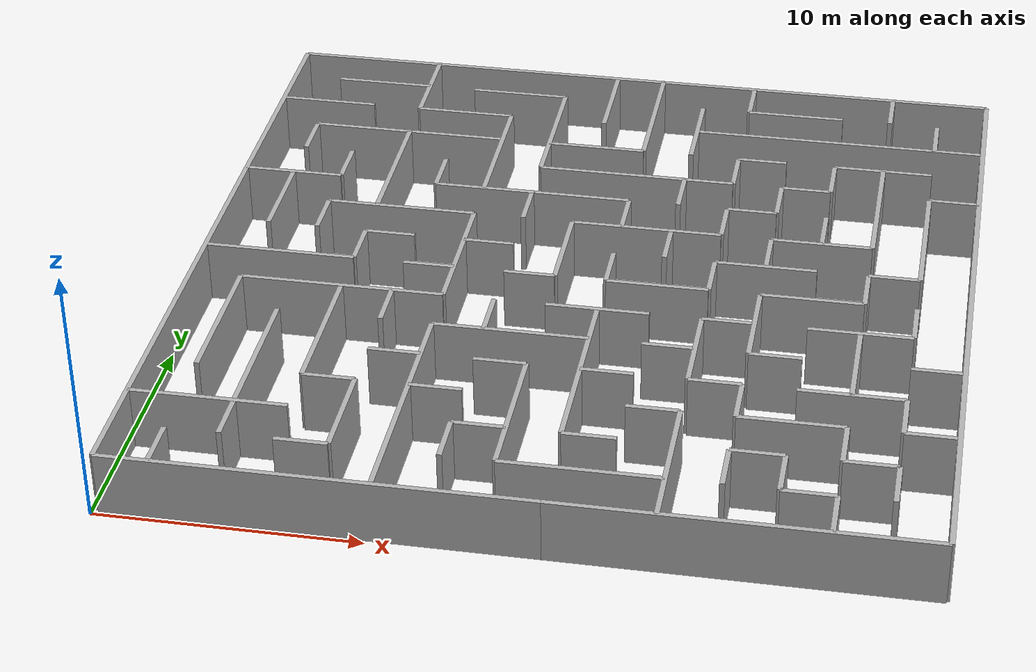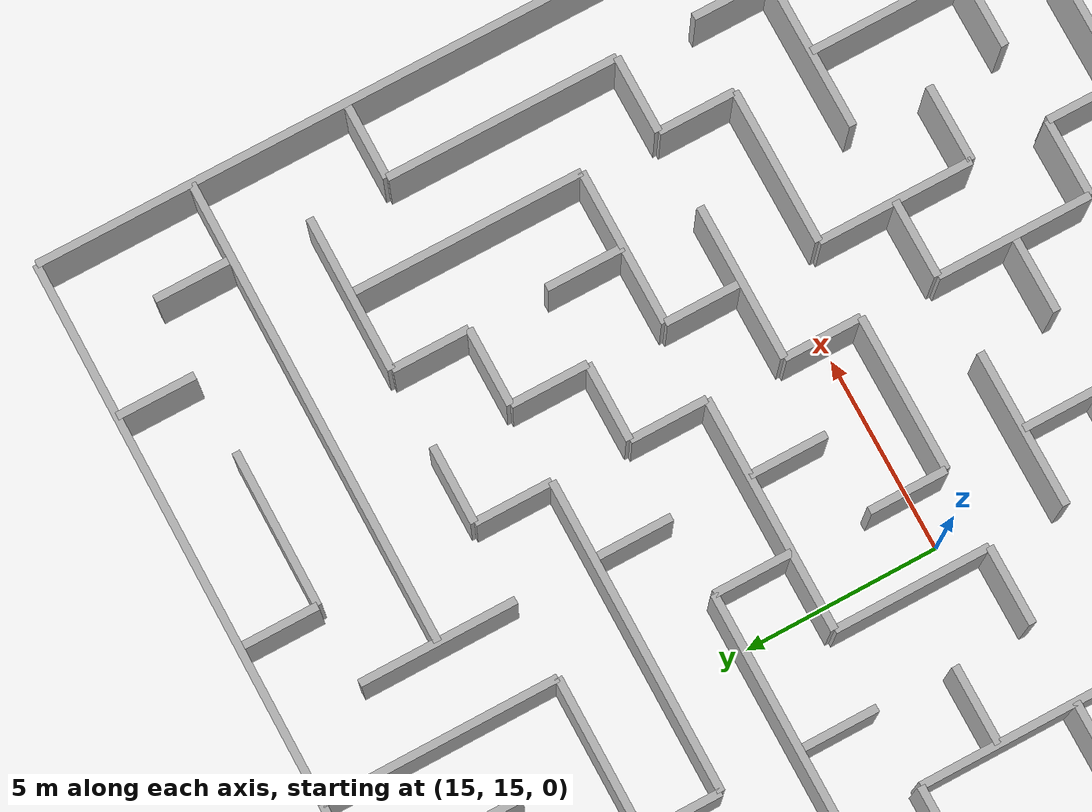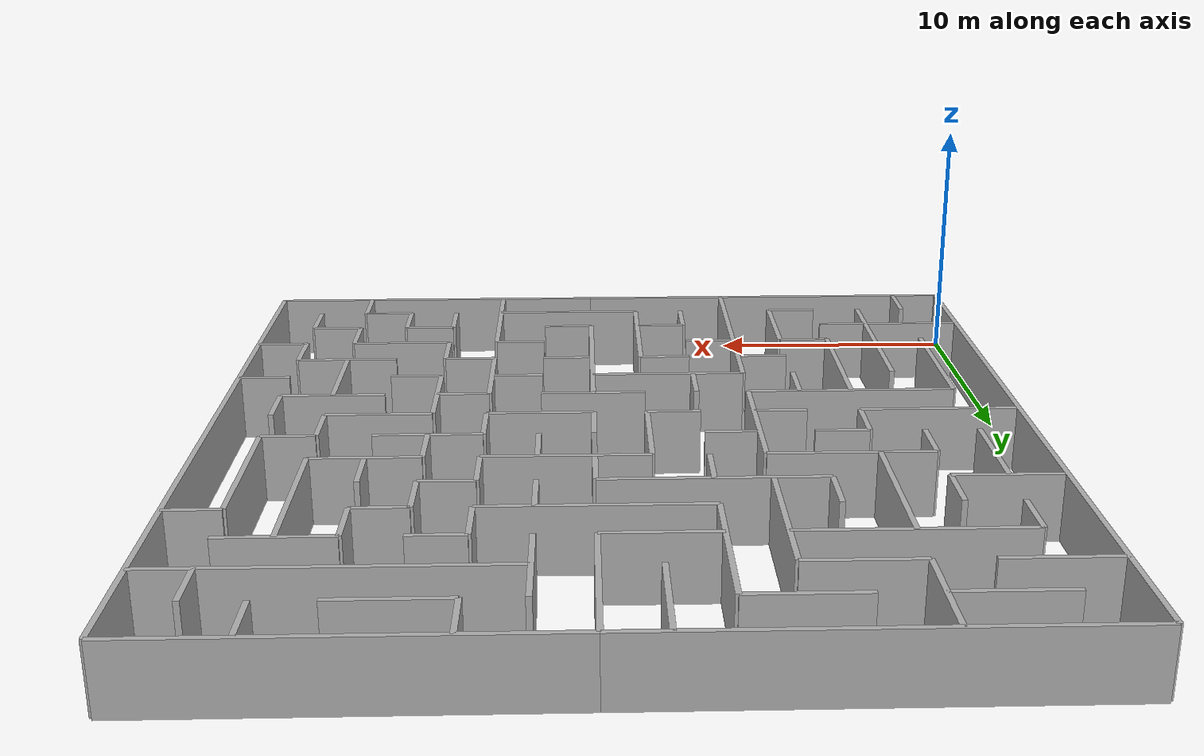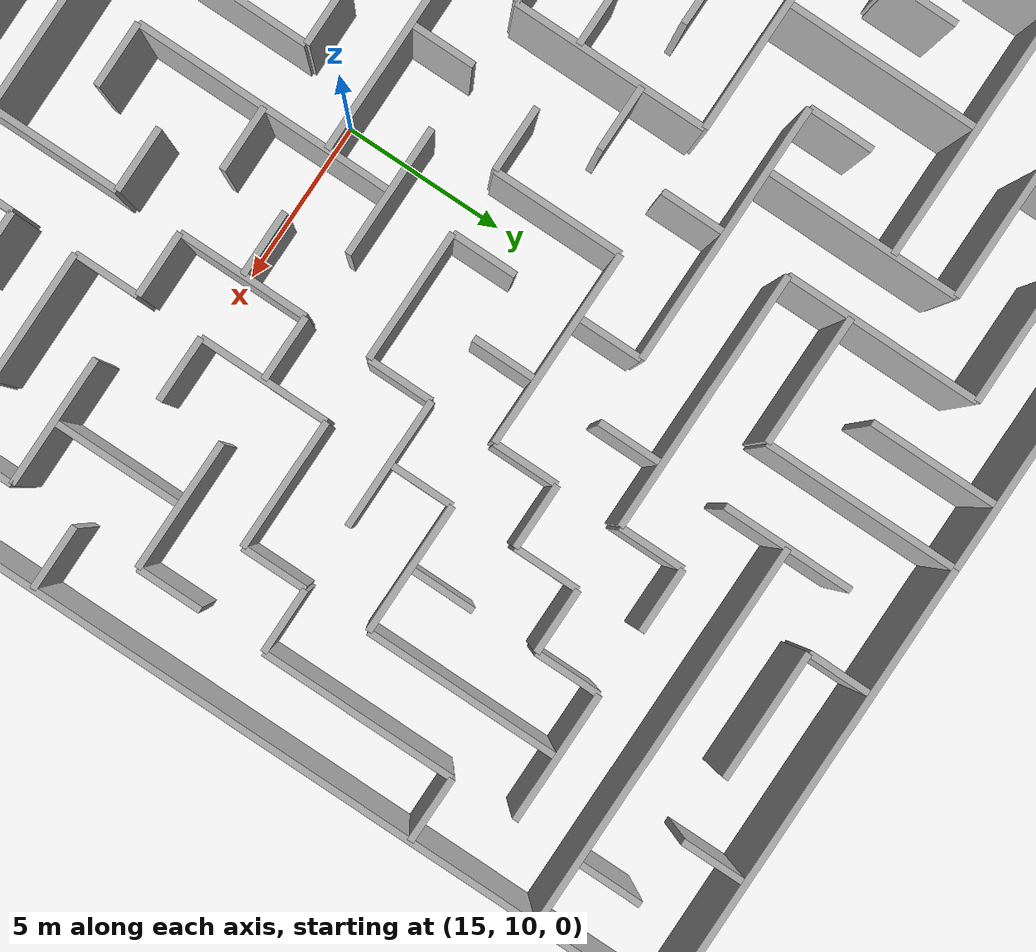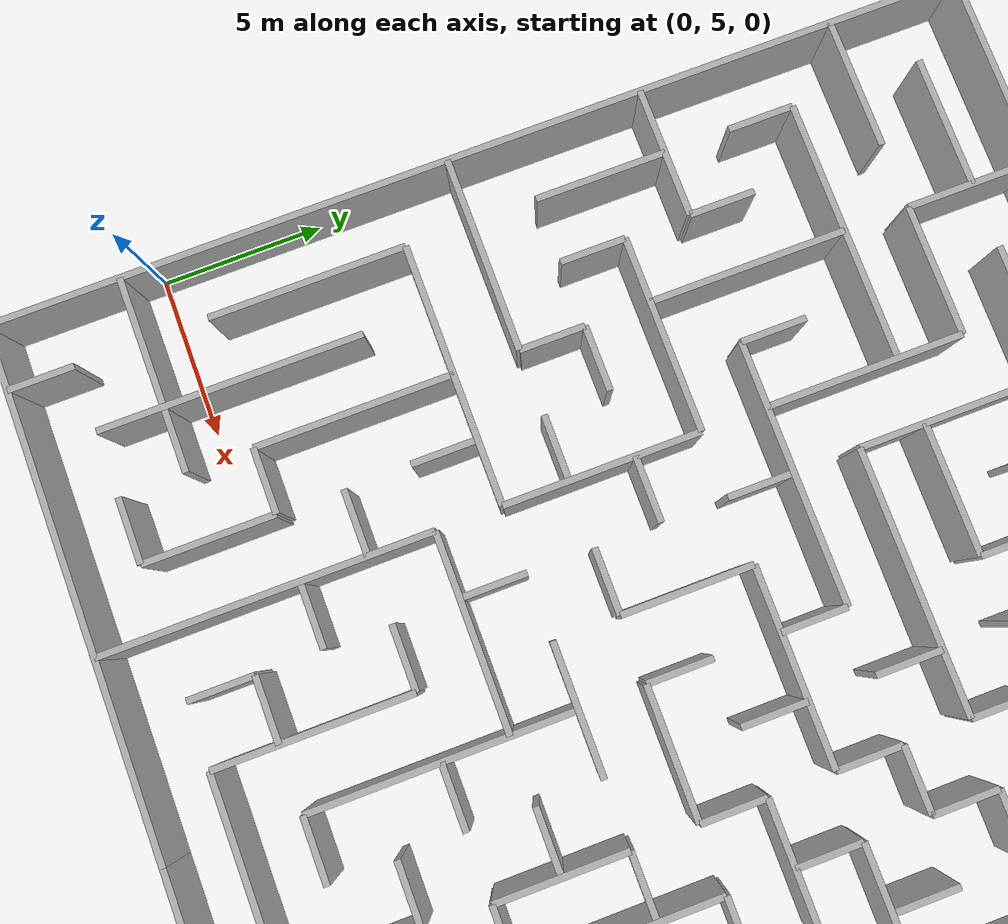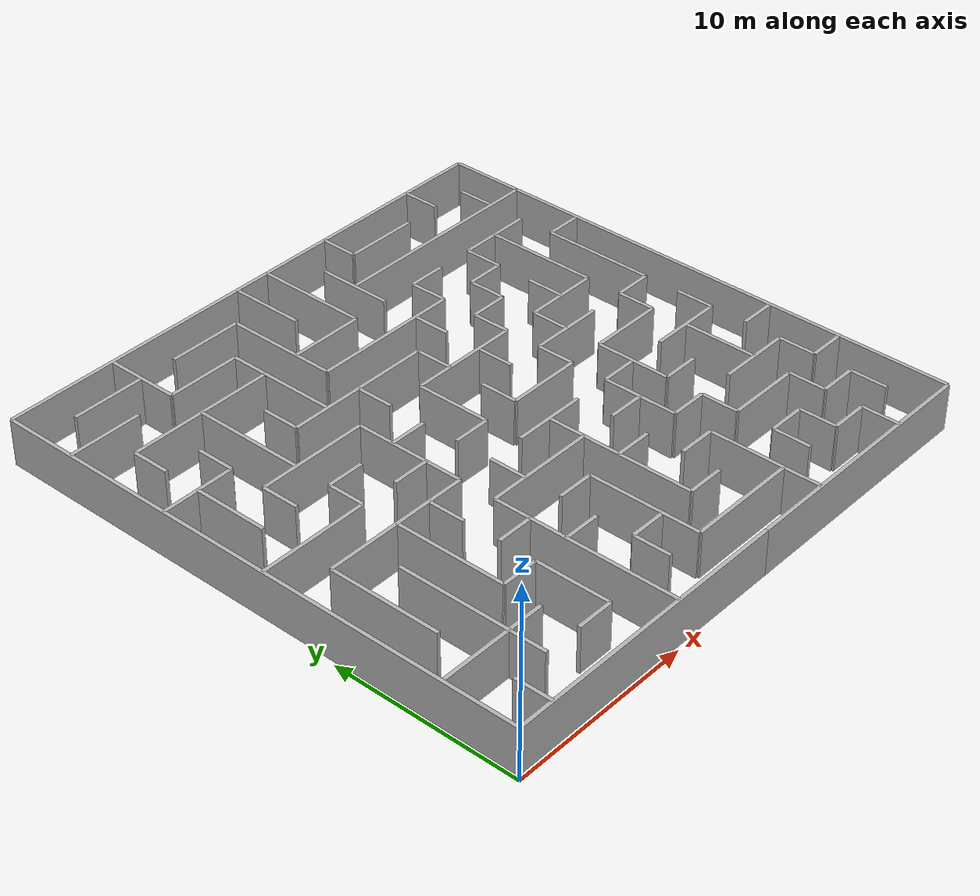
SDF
<?xml version="1.0" ?>
<sdf version="1.6">
  <model name="maze6">
    <static>true</static>
    <link name="wall_0">
      <pose>8.25 0.25 1.25 0 0 0.0</pose>
      <collision name="collision">
        <geometry>
          <box><size>16.0 0.2 2.5</size></box>
        </geometry>
      </collision>
      <visual name="visual">
        <geometry>
          <box><size>16.0 0.2 2.5</size></box>
        </geometry>
        <material>
          <ambient>0.7 0.7 0.7 1</ambient>
          <diffuse>0.7 0.7 0.7 1</diffuse>
        </material>
      </visual>
    </link>
    <link name="wall_1">
      <pose>23.25 0.25 1.25 0 0 0.0</pose>
      <collision name="collision">
        <geometry>
          <box><size>14.0 0.2 2.5</size></box>
        </geometry>
      </collision>
      <visual name="visual">
        <geometry>
          <box><size>14.0 0.2 2.5</size></box>
        </geometry>
        <material>
          <ambient>0.7 0.7 0.7 1</ambient>
          <diffuse>0.7 0.7 0.7 1</diffuse>
        </material>
      </visual>
    </link>
    <link name="wall_2">
      <pose>7.25 2.25 1.25 0 0 0.0</pose>
      <collision name="collision">
        <geometry>
          <box><size>2.0 0.2 2.5</size></box>
        </geometry>
      </collision>
      <visual name="visual">
        <geometry>
          <box><size>2.0 0.2 2.5</size></box>
        </geometry>
        <material>
          <ambient>0.7 0.7 0.7 1</ambient>
          <diffuse>0.7 0.7 0.7 1</diffuse>
        </material>
      </visual>
    </link>
    <link name="wall_3">
      <pose>17.25 2.25 1.25 0 0 0.0</pose>
      <collision name="collision">
        <geometry>
          <box><size>6.0 0.2 2.5</size></box>
        </geometry>
      </collision>
      <visual name="visual">
        <geometry>
          <box><size>6.0 0.2 2.5</size></box>
        </geometry>
        <material>
          <ambient>0.7 0.7 0.7 1</ambient>
          <diffuse>0.7 0.7 0.7 1</diffuse>
        </material>
      </visual>
    </link>
    <link name="wall_4">
      <pose>25.25 2.25 1.25 0 0 0.0</pose>
      <collision name="collision">
        <geometry>
          <box><size>2.0 0.2 2.5</size></box>
        </geometry>
      </collision>
      <visual name="visual">
        <geometry>
          <box><size>2.0 0.2 2.5</size></box>
        </geometry>
        <material>
          <ambient>0.7 0.7 0.7 1</ambient>
          <diffuse>0.7 0.7 0.7 1</diffuse>
        </material>
      </visual>
    </link>
    <link name="wall_5">
      <pose>3.25 4.25 1.25 0 0 0.0</pose>
      <collision name="collision">
        <geometry>
          <box><size>6.0 0.2 2.5</size></box>
        </geometry>
      </collision>
      <visual name="visual">
        <geometry>
          <box><size>6.0 0.2 2.5</size></box>
        </geometry>
        <material>
          <ambient>0.7 0.7 0.7 1</ambient>
          <diffuse>0.7 0.7 0.7 1</diffuse>
        </material>
      </visual>
    </link>
    <link name="wall_6">
      <pose>13.25 4.25 1.25 0 0 0.0</pose>
      <collision name="collision">
        <geometry>
          <box><size>2.0 0.2 2.5</size></box>
        </geometry>
      </collision>
      <visual name="visual">
        <geometry>
          <box><size>2.0 0.2 2.5</size></box>
        </geometry>
        <material>
          <ambient>0.7 0.7 0.7 1</ambient>
          <diffuse>0.7 0.7 0.7 1</diffuse>
        </material>
      </visual>
    </link>
    <link name="wall_7">
      <pose>17.25 4.25 1.25 0 0 0.0</pose>
      <collision name="collision">
        <geometry>
          <box><size>2.0 0.2 2.5</size></box>
        </geometry>
      </collision>
      <visual name="visual">
        <geometry>
          <box><size>2.0 0.2 2.5</size></box>
        </geometry>
        <material>
          <ambient>0.7 0.7 0.7 1</ambient>
          <diffuse>0.7 0.7 0.7 1</diffuse>
        </material>
      </visual>
    </link>
    <link name="wall_8">
      <pose>23.25 4.25 1.25 0 0 0.0</pose>
      <collision name="collision">
        <geometry>
          <box><size>2.0 0.2 2.5</size></box>
        </geometry>
      </collision>
      <visual name="visual">
        <geometry>
          <box><size>2.0 0.2 2.5</size></box>
        </geometry>
        <material>
          <ambient>0.7 0.7 0.7 1</ambient>
          <diffuse>0.7 0.7 0.7 1</diffuse>
        </material>
      </visual>
    </link>
    <link name="wall_9">
      <pose>27.25 4.25 1.25 0 0 0.0</pose>
      <collision name="collision">
        <geometry>
          <box><size>2.0 0.2 2.5</size></box>
        </geometry>
      </collision>
      <visual name="visual">
        <geometry>
          <box><size>2.0 0.2 2.5</size></box>
        </geometry>
        <material>
          <ambient>0.7 0.7 0.7 1</ambient>
          <diffuse>0.7 0.7 0.7 1</diffuse>
        </material>
      </visual>
    </link>
    <link name="wall_10">
      <pose>7.25 6.25 1.25 0 0 0.0</pose>
      <collision name="collision">
        <geometry>
          <box><size>2.0 0.2 2.5</size></box>
        </geometry>
      </collision>
      <visual name="visual">
        <geometry>
          <box><size>2.0 0.2 2.5</size></box>
        </geometry>
        <material>
          <ambient>0.7 0.7 0.7 1</ambient>
          <diffuse>0.7 0.7 0.7 1</diffuse>
        </material>
      </visual>
    </link>
    <link name="wall_11">
      <pose>11.25 6.25 1.25 0 0 0.0</pose>
      <collision name="collision">
        <geometry>
          <box><size>2.0 0.2 2.5</size></box>
        </geometry>
      </collision>
      <visual name="visual">
        <geometry>
          <box><size>2.0 0.2 2.5</size></box>
        </geometry>
        <material>
          <ambient>0.7 0.7 0.7 1</ambient>
          <diffuse>0.7 0.7 0.7 1</diffuse>
        </material>
      </visual>
    </link>
    <link name="wall_12">
      <pose>19.25 6.25 1.25 0 0 0.0</pose>
      <collision name="collision">
        <geometry>
          <box><size>2.0 0.2 2.5</size></box>
        </geometry>
      </collision>
      <visual name="visual">
        <geometry>
          <box><size>2.0 0.2 2.5</size></box>
        </geometry>
        <material>
          <ambient>0.7 0.7 0.7 1</ambient>
          <diffuse>0.7 0.7 0.7 1</diffuse>
        </material>
      </visual>
    </link>
    <link name="wall_13">
      <pose>24.25 6.25 1.25 0 0 0.0</pose>
      <collision name="collision">
        <geometry>
          <box><size>4.0 0.2 2.5</size></box>
        </geometry>
      </collision>
      <visual name="visual">
        <geometry>
          <box><size>4.0 0.2 2.5</size></box>
        </geometry>
        <material>
          <ambient>0.7 0.7 0.7 1</ambient>
          <diffuse>0.7 0.7 0.7 1</diffuse>
        </material>
      </visual>
    </link>
    <link name="wall_14">
      <pose>29.25 6.25 1.25 0 0 0.0</pose>
      <collision name="collision">
        <geometry>
          <box><size>2.0 0.2 2.5</size></box>
        </geometry>
      </collision>
      <visual name="visual">
        <geometry>
          <box><size>2.0 0.2 2.5</size></box>
        </geometry>
        <material>
          <ambient>0.7 0.7 0.7 1</ambient>
          <diffuse>0.7 0.7 0.7 1</diffuse>
        </material>
      </visual>
    </link>
    <link name="wall_15">
      <pose>9.25 8.25 1.25 0 0 0.0</pose>
      <collision name="collision">
        <geometry>
          <box><size>2.0 0.2 2.5</size></box>
        </geometry>
      </collision>
      <visual name="visual">
        <geometry>
          <box><size>2.0 0.2 2.5</size></box>
        </geometry>
        <material>
          <ambient>0.7 0.7 0.7 1</ambient>
          <diffuse>0.7 0.7 0.7 1</diffuse>
        </material>
      </visual>
    </link>
    <link name="wall_16">
      <pose>13.25 8.25 1.25 0 0 0.0</pose>
      <collision name="collision">
        <geometry>
          <box><size>2.0 0.2 2.5</size></box>
        </geometry>
      </collision>
      <visual name="visual">
        <geometry>
          <box><size>2.0 0.2 2.5</size></box>
        </geometry>
        <material>
          <ambient>0.7 0.7 0.7 1</ambient>
          <diffuse>0.7 0.7 0.7 1</diffuse>
        </material>
      </visual>
    </link>
    <link name="wall_17">
      <pose>17.25 8.25 1.25 0 0 0.0</pose>
      <collision name="collision">
        <geometry>
          <box><size>2.0 0.2 2.5</size></box>
        </geometry>
      </collision>
      <visual name="visual">
        <geometry>
          <box><size>2.0 0.2 2.5</size></box>
        </geometry>
        <material>
          <ambient>0.7 0.7 0.7 1</ambient>
          <diffuse>0.7 0.7 0.7 1</diffuse>
        </material>
      </visual>
    </link>
    <link name="wall_18">
      <pose>21.25 8.25 1.25 0 0 0.0</pose>
      <collision name="collision">
        <geometry>
          <box><size>2.0 0.2 2.5</size></box>
        </geometry>
      </collision>
      <visual name="visual">
        <geometry>
          <box><size>2.0 0.2 2.5</size></box>
        </geometry>
        <material>
          <ambient>0.7 0.7 0.7 1</ambient>
          <diffuse>0.7 0.7 0.7 1</diffuse>
        </material>
      </visual>
    </link>
    <link name="wall_19">
      <pose>26.25 8.25 1.25 0 0 0.0</pose>
      <collision name="collision">
        <geometry>
          <box><size>4.0 0.2 2.5</size></box>
        </geometry>
      </collision>
      <visual name="visual">
        <geometry>
          <box><size>4.0 0.2 2.5</size></box>
        </geometry>
        <material>
          <ambient>0.7 0.7 0.7 1</ambient>
          <diffuse>0.7 0.7 0.7 1</diffuse>
        </material>
      </visual>
    </link>
    <link name="wall_20">
      <pose>13.25 10.25 1.25 0 0 0.0</pose>
      <collision name="collision">
        <geometry>
          <box><size>6.0 0.2 2.5</size></box>
        </geometry>
      </collision>
      <visual name="visual">
        <geometry>
          <box><size>6.0 0.2 2.5</size></box>
        </geometry>
        <material>
          <ambient>0.7 0.7 0.7 1</ambient>
          <diffuse>0.7 0.7 0.7 1</diffuse>
        </material>
      </visual>
    </link>
    <link name="wall_21">
      <pose>19.25 10.25 1.25 0 0 0.0</pose>
      <collision name="collision">
        <geometry>
          <box><size>2.0 0.2 2.5</size></box>
        </geometry>
      </collision>
      <visual name="visual">
        <geometry>
          <box><size>2.0 0.2 2.5</size></box>
        </geometry>
        <material>
          <ambient>0.7 0.7 0.7 1</ambient>
          <diffuse>0.7 0.7 0.7 1</diffuse>
        </material>
      </visual>
    </link>
    <link name="wall_22">
      <pose>23.25 10.25 1.25 0 0 0.0</pose>
      <collision name="collision">
        <geometry>
          <box><size>2.0 0.2 2.5</size></box>
        </geometry>
      </collision>
      <visual name="visual">
        <geometry>
          <box><size>2.0 0.2 2.5</size></box>
        </geometry>
        <material>
          <ambient>0.7 0.7 0.7 1</ambient>
          <diffuse>0.7 0.7 0.7 1</diffuse>
        </material>
      </visual>
    </link>
    <link name="wall_23">
      <pose>29.25 10.25 1.25 0 0 0.0</pose>
      <collision name="collision">
        <geometry>
          <box><size>2.0 0.2 2.5</size></box>
        </geometry>
      </collision>
      <visual name="visual">
        <geometry>
          <box><size>2.0 0.2 2.5</size></box>
        </geometry>
        <material>
          <ambient>0.7 0.7 0.7 1</ambient>
          <diffuse>0.7 0.7 0.7 1</diffuse>
        </material>
      </visual>
    </link>
    <link name="wall_24">
      <pose>6.25 12.25 1.25 0 0 0.0</pose>
      <collision name="collision">
        <geometry>
          <box><size>8.0 0.2 2.5</size></box>
        </geometry>
      </collision>
      <visual name="visual">
        <geometry>
          <box><size>8.0 0.2 2.5</size></box>
        </geometry>
        <material>
          <ambient>0.7 0.7 0.7 1</ambient>
          <diffuse>0.7 0.7 0.7 1</diffuse>
        </material>
      </visual>
    </link>
    <link name="wall_25">
      <pose>16.25 12.25 1.25 0 0 0.0</pose>
      <collision name="collision">
        <geometry>
          <box><size>4.0 0.2 2.5</size></box>
        </geometry>
      </collision>
      <visual name="visual">
        <geometry>
          <box><size>4.0 0.2 2.5</size></box>
        </geometry>
        <material>
          <ambient>0.7 0.7 0.7 1</ambient>
          <diffuse>0.7 0.7 0.7 1</diffuse>
        </material>
      </visual>
    </link>
    <link name="wall_26">
      <pose>21.25 12.25 1.25 0 0 0.0</pose>
      <collision name="collision">
        <geometry>
          <box><size>2.0 0.2 2.5</size></box>
        </geometry>
      </collision>
      <visual name="visual">
        <geometry>
          <box><size>2.0 0.2 2.5</size></box>
        </geometry>
        <material>
          <ambient>0.7 0.7 0.7 1</ambient>
          <diffuse>0.7 0.7 0.7 1</diffuse>
        </material>
      </visual>
    </link>
    <link name="wall_27">
      <pose>26.25 12.25 1.25 0 0 0.0</pose>
      <collision name="collision">
        <geometry>
          <box><size>4.0 0.2 2.5</size></box>
        </geometry>
      </collision>
      <visual name="visual">
        <geometry>
          <box><size>4.0 0.2 2.5</size></box>
        </geometry>
        <material>
          <ambient>0.7 0.7 0.7 1</ambient>
          <diffuse>0.7 0.7 0.7 1</diffuse>
        </material>
      </visual>
    </link>
    <link name="wall_28">
      <pose>3.25 14.25 1.25 0 0 0.0</pose>
      <collision name="collision">
        <geometry>
          <box><size>6.0 0.2 2.5</size></box>
        </geometry>
      </collision>
      <visual name="visual">
        <geometry>
          <box><size>6.0 0.2 2.5</size></box>
        </geometry>
        <material>
          <ambient>0.7 0.7 0.7 1</ambient>
          <diffuse>0.7 0.7 0.7 1</diffuse>
        </material>
      </visual>
    </link>
    <link name="wall_29">
      <pose>9.25 14.25 1.25 0 0 0.0</pose>
      <collision name="collision">
        <geometry>
          <box><size>2.0 0.2 2.5</size></box>
        </geometry>
      </collision>
      <visual name="visual">
        <geometry>
          <box><size>2.0 0.2 2.5</size></box>
        </geometry>
        <material>
          <ambient>0.7 0.7 0.7 1</ambient>
          <diffuse>0.7 0.7 0.7 1</diffuse>
        </material>
      </visual>
    </link>
    <link name="wall_30">
      <pose>13.25 14.25 1.25 0 0 0.0</pose>
      <collision name="collision">
        <geometry>
          <box><size>2.0 0.2 2.5</size></box>
        </geometry>
      </collision>
      <visual name="visual">
        <geometry>
          <box><size>2.0 0.2 2.5</size></box>
        </geometry>
        <material>
          <ambient>0.7 0.7 0.7 1</ambient>
          <diffuse>0.7 0.7 0.7 1</diffuse>
        </material>
      </visual>
    </link>
    <link name="wall_31">
      <pose>18.25 14.25 1.25 0 0 0.0</pose>
      <collision name="collision">
        <geometry>
          <box><size>4.0 0.2 2.5</size></box>
        </geometry>
      </collision>
      <visual name="visual">
        <geometry>
          <box><size>4.0 0.2 2.5</size></box>
        </geometry>
        <material>
          <ambient>0.7 0.7 0.7 1</ambient>
          <diffuse>0.7 0.7 0.7 1</diffuse>
        </material>
      </visual>
    </link>
    <link name="wall_32">
      <pose>24.25 14.25 1.25 0 0 0.0</pose>
      <collision name="collision">
        <geometry>
          <box><size>4.0 0.2 2.5</size></box>
        </geometry>
      </collision>
      <visual name="visual">
        <geometry>
          <box><size>4.0 0.2 2.5</size></box>
        </geometry>
        <material>
          <ambient>0.7 0.7 0.7 1</ambient>
          <diffuse>0.7 0.7 0.7 1</diffuse>
        </material>
      </visual>
    </link>
    <link name="wall_33">
      <pose>7.25 16.25 1.25 0 0 0.0</pose>
      <collision name="collision">
        <geometry>
          <box><size>2.0 0.2 2.5</size></box>
        </geometry>
      </collision>
      <visual name="visual">
        <geometry>
          <box><size>2.0 0.2 2.5</size></box>
        </geometry>
        <material>
          <ambient>0.7 0.7 0.7 1</ambient>
          <diffuse>0.7 0.7 0.7 1</diffuse>
        </material>
      </visual>
    </link>
    <link name="wall_34">
      <pose>11.25 16.25 1.25 0 0 0.0</pose>
      <collision name="collision">
        <geometry>
          <box><size>2.0 0.2 2.5</size></box>
        </geometry>
      </collision>
      <visual name="visual">
        <geometry>
          <box><size>2.0 0.2 2.5</size></box>
        </geometry>
        <material>
          <ambient>0.7 0.7 0.7 1</ambient>
          <diffuse>0.7 0.7 0.7 1</diffuse>
        </material>
      </visual>
    </link>
    <link name="wall_35">
      <pose>22.25 16.25 1.25 0 0 0.0</pose>
      <collision name="collision">
        <geometry>
          <box><size>4.0 0.2 2.5</size></box>
        </geometry>
      </collision>
      <visual name="visual">
        <geometry>
          <box><size>4.0 0.2 2.5</size></box>
        </geometry>
        <material>
          <ambient>0.7 0.7 0.7 1</ambient>
          <diffuse>0.7 0.7 0.7 1</diffuse>
        </material>
      </visual>
    </link>
    <link name="wall_36">
      <pose>27.25 16.25 1.25 0 0 0.0</pose>
      <collision name="collision">
        <geometry>
          <box><size>2.0 0.2 2.5</size></box>
        </geometry>
      </collision>
      <visual name="visual">
        <geometry>
          <box><size>2.0 0.2 2.5</size></box>
        </geometry>
        <material>
          <ambient>0.7 0.7 0.7 1</ambient>
          <diffuse>0.7 0.7 0.7 1</diffuse>
        </material>
      </visual>
    </link>
    <link name="wall_37">
      <pose>7.25 18.25 1.25 0 0 0.0</pose>
      <collision name="collision">
        <geometry>
          <box><size>6.0 0.2 2.5</size></box>
        </geometry>
      </collision>
      <visual name="visual">
        <geometry>
          <box><size>6.0 0.2 2.5</size></box>
        </geometry>
        <material>
          <ambient>0.7 0.7 0.7 1</ambient>
          <diffuse>0.7 0.7 0.7 1</diffuse>
        </material>
      </visual>
    </link>
    <link name="wall_38">
      <pose>17.25 18.25 1.25 0 0 0.0</pose>
      <collision name="collision">
        <geometry>
          <box><size>6.0 0.2 2.5</size></box>
        </geometry>
      </collision>
      <visual name="visual">
        <geometry>
          <box><size>6.0 0.2 2.5</size></box>
        </geometry>
        <material>
          <ambient>0.7 0.7 0.7 1</ambient>
          <diffuse>0.7 0.7 0.7 1</diffuse>
        </material>
      </visual>
    </link>
    <link name="wall_39">
      <pose>24.25 18.25 1.25 0 0 0.0</pose>
      <collision name="collision">
        <geometry>
          <box><size>4.0 0.2 2.5</size></box>
        </geometry>
      </collision>
      <visual name="visual">
        <geometry>
          <box><size>4.0 0.2 2.5</size></box>
        </geometry>
        <material>
          <ambient>0.7 0.7 0.7 1</ambient>
          <diffuse>0.7 0.7 0.7 1</diffuse>
        </material>
      </visual>
    </link>
    <link name="wall_40">
      <pose>2.25 20.25 1.25 0 0 0.0</pose>
      <collision name="collision">
        <geometry>
          <box><size>4.0 0.2 2.5</size></box>
        </geometry>
      </collision>
      <visual name="visual">
        <geometry>
          <box><size>4.0 0.2 2.5</size></box>
        </geometry>
        <material>
          <ambient>0.7 0.7 0.7 1</ambient>
          <diffuse>0.7 0.7 0.7 1</diffuse>
        </material>
      </visual>
    </link>
    <link name="wall_41">
      <pose>12.25 20.25 1.25 0 0 0.0</pose>
      <collision name="collision">
        <geometry>
          <box><size>8.0 0.2 2.5</size></box>
        </geometry>
      </collision>
      <visual name="visual">
        <geometry>
          <box><size>8.0 0.2 2.5</size></box>
        </geometry>
        <material>
          <ambient>0.7 0.7 0.7 1</ambient>
          <diffuse>0.7 0.7 0.7 1</diffuse>
        </material>
      </visual>
    </link>
    <link name="wall_42">
      <pose>21.25 20.25 1.25 0 0 0.0</pose>
      <collision name="collision">
        <geometry>
          <box><size>2.0 0.2 2.5</size></box>
        </geometry>
      </collision>
      <visual name="visual">
        <geometry>
          <box><size>2.0 0.2 2.5</size></box>
        </geometry>
        <material>
          <ambient>0.7 0.7 0.7 1</ambient>
          <diffuse>0.7 0.7 0.7 1</diffuse>
        </material>
      </visual>
    </link>
    <link name="wall_43">
      <pose>16.25 22.25 1.25 0 0 0.0</pose>
      <collision name="collision">
        <geometry>
          <box><size>8.0 0.2 2.5</size></box>
        </geometry>
      </collision>
      <visual name="visual">
        <geometry>
          <box><size>8.0 0.2 2.5</size></box>
        </geometry>
        <material>
          <ambient>0.7 0.7 0.7 1</ambient>
          <diffuse>0.7 0.7 0.7 1</diffuse>
        </material>
      </visual>
    </link>
    <link name="wall_44">
      <pose>23.25 22.25 1.25 0 0 0.0</pose>
      <collision name="collision">
        <geometry>
          <box><size>2.0 0.2 2.5</size></box>
        </geometry>
      </collision>
      <visual name="visual">
        <geometry>
          <box><size>2.0 0.2 2.5</size></box>
        </geometry>
        <material>
          <ambient>0.7 0.7 0.7 1</ambient>
          <diffuse>0.7 0.7 0.7 1</diffuse>
        </material>
      </visual>
    </link>
    <link name="wall_45">
      <pose>29.25 22.25 1.25 0 0 0.0</pose>
      <collision name="collision">
        <geometry>
          <box><size>2.0 0.2 2.5</size></box>
        </geometry>
      </collision>
      <visual name="visual">
        <geometry>
          <box><size>2.0 0.2 2.5</size></box>
        </geometry>
        <material>
          <ambient>0.7 0.7 0.7 1</ambient>
          <diffuse>0.7 0.7 0.7 1</diffuse>
        </material>
      </visual>
    </link>
    <link name="wall_46">
      <pose>6.25 24.25 1.25 0 0 0.0</pose>
      <collision name="collision">
        <geometry>
          <box><size>8.0 0.2 2.5</size></box>
        </geometry>
      </collision>
      <visual name="visual">
        <geometry>
          <box><size>8.0 0.2 2.5</size></box>
        </geometry>
        <material>
          <ambient>0.7 0.7 0.7 1</ambient>
          <diffuse>0.7 0.7 0.7 1</diffuse>
        </material>
      </visual>
    </link>
    <link name="wall_47">
      <pose>14.25 24.25 1.25 0 0 0.0</pose>
      <collision name="collision">
        <geometry>
          <box><size>4.0 0.2 2.5</size></box>
        </geometry>
      </collision>
      <visual name="visual">
        <geometry>
          <box><size>4.0 0.2 2.5</size></box>
        </geometry>
        <material>
          <ambient>0.7 0.7 0.7 1</ambient>
          <diffuse>0.7 0.7 0.7 1</diffuse>
        </material>
      </visual>
    </link>
    <link name="wall_48">
      <pose>21.25 24.25 1.25 0 0 0.0</pose>
      <collision name="collision">
        <geometry>
          <box><size>2.0 0.2 2.5</size></box>
        </geometry>
      </collision>
      <visual name="visual">
        <geometry>
          <box><size>2.0 0.2 2.5</size></box>
        </geometry>
        <material>
          <ambient>0.7 0.7 0.7 1</ambient>
          <diffuse>0.7 0.7 0.7 1</diffuse>
        </material>
      </visual>
    </link>
    <link name="wall_49">
      <pose>26.25 24.25 1.25 0 0 0.0</pose>
      <collision name="collision">
        <geometry>
          <box><size>4.0 0.2 2.5</size></box>
        </geometry>
      </collision>
      <visual name="visual">
        <geometry>
          <box><size>4.0 0.2 2.5</size></box>
        </geometry>
        <material>
          <ambient>0.7 0.7 0.7 1</ambient>
          <diffuse>0.7 0.7 0.7 1</diffuse>
        </material>
      </visual>
    </link>
    <link name="wall_50">
      <pose>2.25 26.25 1.25 0 0 0.0</pose>
      <collision name="collision">
        <geometry>
          <box><size>4.0 0.2 2.5</size></box>
        </geometry>
      </collision>
      <visual name="visual">
        <geometry>
          <box><size>4.0 0.2 2.5</size></box>
        </geometry>
        <material>
          <ambient>0.7 0.7 0.7 1</ambient>
          <diffuse>0.7 0.7 0.7 1</diffuse>
        </material>
      </visual>
    </link>
    <link name="wall_51">
      <pose>8.25 26.25 1.25 0 0 0.0</pose>
      <collision name="collision">
        <geometry>
          <box><size>4.0 0.2 2.5</size></box>
        </geometry>
      </collision>
      <visual name="visual">
        <geometry>
          <box><size>4.0 0.2 2.5</size></box>
        </geometry>
        <material>
          <ambient>0.7 0.7 0.7 1</ambient>
          <diffuse>0.7 0.7 0.7 1</diffuse>
        </material>
      </visual>
    </link>
    <link name="wall_52">
      <pose>24.25 26.25 1.25 0 0 0.0</pose>
      <collision name="collision">
        <geometry>
          <box><size>12.0 0.2 2.5</size></box>
        </geometry>
      </collision>
      <visual name="visual">
        <geometry>
          <box><size>12.0 0.2 2.5</size></box>
        </geometry>
        <material>
          <ambient>0.7 0.7 0.7 1</ambient>
          <diffuse>0.7 0.7 0.7 1</diffuse>
        </material>
      </visual>
    </link>
    <link name="wall_53">
      <pose>4.25 28.25 1.25 0 0 0.0</pose>
      <collision name="collision">
        <geometry>
          <box><size>4.0 0.2 2.5</size></box>
        </geometry>
      </collision>
      <visual name="visual">
        <geometry>
          <box><size>4.0 0.2 2.5</size></box>
        </geometry>
        <material>
          <ambient>0.7 0.7 0.7 1</ambient>
          <diffuse>0.7 0.7 0.7 1</diffuse>
        </material>
      </visual>
    </link>
    <link name="wall_54">
      <pose>10.25 28.25 1.25 0 0 0.0</pose>
      <collision name="collision">
        <geometry>
          <box><size>4.0 0.2 2.5</size></box>
        </geometry>
      </collision>
      <visual name="visual">
        <geometry>
          <box><size>4.0 0.2 2.5</size></box>
        </geometry>
        <material>
          <ambient>0.7 0.7 0.7 1</ambient>
          <diffuse>0.7 0.7 0.7 1</diffuse>
        </material>
      </visual>
    </link>
    <link name="wall_55">
      <pose>22.25 28.25 1.25 0 0 0.0</pose>
      <collision name="collision">
        <geometry>
          <box><size>4.0 0.2 2.5</size></box>
        </geometry>
      </collision>
      <visual name="visual">
        <geometry>
          <box><size>4.0 0.2 2.5</size></box>
        </geometry>
        <material>
          <ambient>0.7 0.7 0.7 1</ambient>
          <diffuse>0.7 0.7 0.7 1</diffuse>
        </material>
      </visual>
    </link>
    <link name="wall_56">
      <pose>8.25 30.25 1.25 0 0 0.0</pose>
      <collision name="collision">
        <geometry>
          <box><size>16.0 0.2 2.5</size></box>
        </geometry>
      </collision>
      <visual name="visual">
        <geometry>
          <box><size>16.0 0.2 2.5</size></box>
        </geometry>
        <material>
          <ambient>0.7 0.7 0.7 1</ambient>
          <diffuse>0.7 0.7 0.7 1</diffuse>
        </material>
      </visual>
    </link>
    <link name="wall_57">
      <pose>23.25 30.25 1.25 0 0 0.0</pose>
      <collision name="collision">
        <geometry>
          <box><size>14.0 0.2 2.5</size></box>
        </geometry>
      </collision>
      <visual name="visual">
        <geometry>
          <box><size>14.0 0.2 2.5</size></box>
        </geometry>
        <material>
          <ambient>0.7 0.7 0.7 1</ambient>
          <diffuse>0.7 0.7 0.7 1</diffuse>
        </material>
      </visual>
    </link>
    <link name="wall_58">
      <pose>0.25 15.25 1.25 0 0 1.5707963267948966</pose>
      <collision name="collision">
        <geometry>
          <box><size>30.0 0.2 2.5</size></box>
        </geometry>
      </collision>
      <visual name="visual">
        <geometry>
          <box><size>30.0 0.2 2.5</size></box>
        </geometry>
        <material>
          <ambient>0.7 0.7 0.7 1</ambient>
          <diffuse>0.7 0.7 0.7 1</diffuse>
        </material>
      </visual>
    </link>
    <link name="wall_59">
      <pose>2.25 1.25 1.25 0 0 1.5707963267948966</pose>
      <collision name="collision">
        <geometry>
          <box><size>2.0 0.2 2.5</size></box>
        </geometry>
      </collision>
      <visual name="visual">
        <geometry>
          <box><size>2.0 0.2 2.5</size></box>
        </geometry>
        <material>
          <ambient>0.7 0.7 0.7 1</ambient>
          <diffuse>0.7 0.7 0.7 1</diffuse>
        </material>
      </visual>
    </link>
    <link name="wall_60">
      <pose>2.25 9.25 1.25 0 0 1.5707963267948966</pose>
      <collision name="collision">
        <geometry>
          <box><size>6.0 0.2 2.5</size></box>
        </geometry>
      </collision>
      <visual name="visual">
        <geometry>
          <box><size>6.0 0.2 2.5</size></box>
        </geometry>
        <material>
          <ambient>0.7 0.7 0.7 1</ambient>
          <diffuse>0.7 0.7 0.7 1</diffuse>
        </material>
      </visual>
    </link>
    <link name="wall_61">
      <pose>2.25 18.25 1.25 0 0 1.5707963267948966</pose>
      <collision name="collision">
        <geometry>
          <box><size>4.0 0.2 2.5</size></box>
        </geometry>
      </collision>
      <visual name="visual">
        <geometry>
          <box><size>4.0 0.2 2.5</size></box>
        </geometry>
        <material>
          <ambient>0.7 0.7 0.7 1</ambient>
          <diffuse>0.7 0.7 0.7 1</diffuse>
        </material>
      </visual>
    </link>
    <link name="wall_62">
      <pose>2.25 23.25 1.25 0 0 1.5707963267948966</pose>
      <collision name="collision">
        <geometry>
          <box><size>2.0 0.2 2.5</size></box>
        </geometry>
      </collision>
      <visual name="visual">
        <geometry>
          <box><size>2.0 0.2 2.5</size></box>
        </geometry>
        <material>
          <ambient>0.7 0.7 0.7 1</ambient>
          <diffuse>0.7 0.7 0.7 1</diffuse>
        </material>
      </visual>
    </link>
    <link name="wall_63">
      <pose>4.25 6.25 1.25 0 0 1.5707963267948966</pose>
      <collision name="collision">
        <geometry>
          <box><size>8.0 0.2 2.5</size></box>
        </geometry>
      </collision>
      <visual name="visual">
        <geometry>
          <box><size>8.0 0.2 2.5</size></box>
        </geometry>
        <material>
          <ambient>0.7 0.7 0.7 1</ambient>
          <diffuse>0.7 0.7 0.7 1</diffuse>
        </material>
      </visual>
    </link>
    <link name="wall_64">
      <pose>4.25 17.25 1.25 0 0 1.5707963267948966</pose>
      <collision name="collision">
        <geometry>
          <box><size>2.0 0.2 2.5</size></box>
        </geometry>
      </collision>
      <visual name="visual">
        <geometry>
          <box><size>2.0 0.2 2.5</size></box>
        </geometry>
        <material>
          <ambient>0.7 0.7 0.7 1</ambient>
          <diffuse>0.7 0.7 0.7 1</diffuse>
        </material>
      </visual>
    </link>
    <link name="wall_65">
      <pose>4.25 21.25 1.25 0 0 1.5707963267948966</pose>
      <collision name="collision">
        <geometry>
          <box><size>2.0 0.2 2.5</size></box>
        </geometry>
      </collision>
      <visual name="visual">
        <geometry>
          <box><size>2.0 0.2 2.5</size></box>
        </geometry>
        <material>
          <ambient>0.7 0.7 0.7 1</ambient>
          <diffuse>0.7 0.7 0.7 1</diffuse>
        </material>
      </visual>
    </link>
    <link name="wall_66">
      <pose>6.25 9.25 1.25 0 0 1.5707963267948966</pose>
      <collision name="collision">
        <geometry>
          <box><size>6.0 0.2 2.5</size></box>
        </geometry>
      </collision>
      <visual name="visual">
        <geometry>
          <box><size>6.0 0.2 2.5</size></box>
        </geometry>
        <material>
          <ambient>0.7 0.7 0.7 1</ambient>
          <diffuse>0.7 0.7 0.7 1</diffuse>
        </material>
      </visual>
    </link>
    <link name="wall_67">
      <pose>6.25 15.25 1.25 0 0 1.5707963267948966</pose>
      <collision name="collision">
        <geometry>
          <box><size>2.0 0.2 2.5</size></box>
        </geometry>
      </collision>
      <visual name="visual">
        <geometry>
          <box><size>2.0 0.2 2.5</size></box>
        </geometry>
        <material>
          <ambient>0.7 0.7 0.7 1</ambient>
          <diffuse>0.7 0.7 0.7 1</diffuse>
        </material>
      </visual>
    </link>
    <link name="wall_68">
      <pose>6.25 21.25 1.25 0 0 1.5707963267948966</pose>
      <collision name="collision">
        <geometry>
          <box><size>6.0 0.2 2.5</size></box>
        </geometry>
      </collision>
      <visual name="visual">
        <geometry>
          <box><size>6.0 0.2 2.5</size></box>
        </geometry>
        <material>
          <ambient>0.7 0.7 0.7 1</ambient>
          <diffuse>0.7 0.7 0.7 1</diffuse>
        </material>
      </visual>
    </link>
    <link name="wall_69">
      <pose>6.25 28.25 1.25 0 0 1.5707963267948966</pose>
      <collision name="collision">
        <geometry>
          <box><size>4.0 0.2 2.5</size></box>
        </geometry>
      </collision>
      <visual name="visual">
        <geometry>
          <box><size>4.0 0.2 2.5</size></box>
        </geometry>
        <material>
          <ambient>0.7 0.7 0.7 1</ambient>
          <diffuse>0.7 0.7 0.7 1</diffuse>
        </material>
      </visual>
    </link>
    <link name="wall_70">
      <pose>8.25 4.25 1.25 0 0 1.5707963267948966</pose>
      <collision name="collision">
        <geometry>
          <box><size>4.0 0.2 2.5</size></box>
        </geometry>
      </collision>
      <visual name="visual">
        <geometry>
          <box><size>4.0 0.2 2.5</size></box>
        </geometry>
        <material>
          <ambient>0.7 0.7 0.7 1</ambient>
          <diffuse>0.7 0.7 0.7 1</diffuse>
        </material>
      </visual>
    </link>
    <link name="wall_71">
      <pose>8.25 11.25 1.25 0 0 1.5707963267948966</pose>
      <collision name="collision">
        <geometry>
          <box><size>2.0 0.2 2.5</size></box>
        </geometry>
      </collision>
      <visual name="visual">
        <geometry>
          <box><size>2.0 0.2 2.5</size></box>
        </geometry>
        <material>
          <ambient>0.7 0.7 0.7 1</ambient>
          <diffuse>0.7 0.7 0.7 1</diffuse>
        </material>
      </visual>
    </link>
    <link name="wall_72">
      <pose>8.25 21.25 1.25 0 0 1.5707963267948966</pose>
      <collision name="collision">
        <geometry>
          <box><size>2.0 0.2 2.5</size></box>
        </geometry>
      </collision>
      <visual name="visual">
        <geometry>
          <box><size>2.0 0.2 2.5</size></box>
        </geometry>
        <material>
          <ambient>0.7 0.7 0.7 1</ambient>
          <diffuse>0.7 0.7 0.7 1</diffuse>
        </material>
      </visual>
    </link>
    <link name="wall_73">
      <pose>10.25 5.25 1.25 0 0 1.5707963267948966</pose>
      <collision name="collision">
        <geometry>
          <box><size>10.0 0.2 2.5</size></box>
        </geometry>
      </collision>
      <visual name="visual">
        <geometry>
          <box><size>10.0 0.2 2.5</size></box>
        </geometry>
        <material>
          <ambient>0.7 0.7 0.7 1</ambient>
          <diffuse>0.7 0.7 0.7 1</diffuse>
        </material>
      </visual>
    </link>
    <link name="wall_74">
      <pose>10.25 15.25 1.25 0 0 1.5707963267948966</pose>
      <collision name="collision">
        <geometry>
          <box><size>6.0 0.2 2.5</size></box>
        </geometry>
      </collision>
      <visual name="visual">
        <geometry>
          <box><size>6.0 0.2 2.5</size></box>
        </geometry>
        <material>
          <ambient>0.7 0.7 0.7 1</ambient>
          <diffuse>0.7 0.7 0.7 1</diffuse>
        </material>
      </visual>
    </link>
    <link name="wall_75">
      <pose>10.25 23.25 1.25 0 0 1.5707963267948966</pose>
      <collision name="collision">
        <geometry>
          <box><size>6.0 0.2 2.5</size></box>
        </geometry>
      </collision>
      <visual name="visual">
        <geometry>
          <box><size>6.0 0.2 2.5</size></box>
        </geometry>
        <material>
          <ambient>0.7 0.7 0.7 1</ambient>
          <diffuse>0.7 0.7 0.7 1</diffuse>
        </material>
      </visual>
    </link>
    <link name="wall_76">
      <pose>12.25 3.25 1.25 0 0 1.5707963267948966</pose>
      <collision name="collision">
        <geometry>
          <box><size>2.0 0.2 2.5</size></box>
        </geometry>
      </collision>
      <visual name="visual">
        <geometry>
          <box><size>2.0 0.2 2.5</size></box>
        </geometry>
        <material>
          <ambient>0.7 0.7 0.7 1</ambient>
          <diffuse>0.7 0.7 0.7 1</diffuse>
        </material>
      </visual>
    </link>
    <link name="wall_77">
      <pose>12.25 11.25 1.25 0 0 1.5707963267948966</pose>
      <collision name="collision">
        <geometry>
          <box><size>2.0 0.2 2.5</size></box>
        </geometry>
      </collision>
      <visual name="visual">
        <geometry>
          <box><size>2.0 0.2 2.5</size></box>
        </geometry>
        <material>
          <ambient>0.7 0.7 0.7 1</ambient>
          <diffuse>0.7 0.7 0.7 1</diffuse>
        </material>
      </visual>
    </link>
    <link name="wall_78">
      <pose>12.25 19.25 1.25 0 0 1.5707963267948966</pose>
      <collision name="collision">
        <geometry>
          <box><size>2.0 0.2 2.5</size></box>
        </geometry>
      </collision>
      <visual name="visual">
        <geometry>
          <box><size>2.0 0.2 2.5</size></box>
        </geometry>
        <material>
          <ambient>0.7 0.7 0.7 1</ambient>
          <diffuse>0.7 0.7 0.7 1</diffuse>
        </material>
      </visual>
    </link>
    <link name="wall_79">
      <pose>12.25 25.25 1.25 0 0 1.5707963267948966</pose>
      <collision name="collision">
        <geometry>
          <box><size>6.0 0.2 2.5</size></box>
        </geometry>
      </collision>
      <visual name="visual">
        <geometry>
          <box><size>6.0 0.2 2.5</size></box>
        </geometry>
        <material>
          <ambient>0.7 0.7 0.7 1</ambient>
          <diffuse>0.7 0.7 0.7 1</diffuse>
        </material>
      </visual>
    </link>
    <link name="wall_80">
      <pose>14.25 5.25 1.25 0 0 1.5707963267948966</pose>
      <collision name="collision">
        <geometry>
          <box><size>6.0 0.2 2.5</size></box>
        </geometry>
      </collision>
      <visual name="visual">
        <geometry>
          <box><size>6.0 0.2 2.5</size></box>
        </geometry>
        <material>
          <ambient>0.7 0.7 0.7 1</ambient>
          <diffuse>0.7 0.7 0.7 1</diffuse>
        </material>
      </visual>
    </link>
    <link name="wall_81">
      <pose>14.25 16.25 1.25 0 0 1.5707963267948966</pose>
      <collision name="collision">
        <geometry>
          <box><size>4.0 0.2 2.5</size></box>
        </geometry>
      </collision>
      <visual name="visual">
        <geometry>
          <box><size>4.0 0.2 2.5</size></box>
        </geometry>
        <material>
          <ambient>0.7 0.7 0.7 1</ambient>
          <diffuse>0.7 0.7 0.7 1</diffuse>
        </material>
      </visual>
    </link>
    <link name="wall_82">
      <pose>14.25 28.25 1.25 0 0 1.5707963267948966</pose>
      <collision name="collision">
        <geometry>
          <box><size>4.0 0.2 2.5</size></box>
        </geometry>
      </collision>
      <visual name="visual">
        <geometry>
          <box><size>4.0 0.2 2.5</size></box>
        </geometry>
        <material>
          <ambient>0.7 0.7 0.7 1</ambient>
          <diffuse>0.7 0.7 0.7 1</diffuse>
        </material>
      </visual>
    </link>
    <link name="wall_83">
      <pose>16.25 8.25 1.25 0 0 1.5707963267948966</pose>
      <collision name="collision">
        <geometry>
          <box><size>8.0 0.2 2.5</size></box>
        </geometry>
      </collision>
      <visual name="visual">
        <geometry>
          <box><size>8.0 0.2 2.5</size></box>
        </geometry>
        <material>
          <ambient>0.7 0.7 0.7 1</ambient>
          <diffuse>0.7 0.7 0.7 1</diffuse>
        </material>
      </visual>
    </link>
    <link name="wall_84">
      <pose>16.25 15.25 1.25 0 0 1.5707963267948966</pose>
      <collision name="collision">
        <geometry>
          <box><size>2.0 0.2 2.5</size></box>
        </geometry>
      </collision>
      <visual name="visual">
        <geometry>
          <box><size>2.0 0.2 2.5</size></box>
        </geometry>
        <material>
          <ambient>0.7 0.7 0.7 1</ambient>
          <diffuse>0.7 0.7 0.7 1</diffuse>
        </material>
      </visual>
    </link>
    <link name="wall_85">
      <pose>16.25 19.25 1.25 0 0 1.5707963267948966</pose>
      <collision name="collision">
        <geometry>
          <box><size>2.0 0.2 2.5</size></box>
        </geometry>
      </collision>
      <visual name="visual">
        <geometry>
          <box><size>2.0 0.2 2.5</size></box>
        </geometry>
        <material>
          <ambient>0.7 0.7 0.7 1</ambient>
          <diffuse>0.7 0.7 0.7 1</diffuse>
        </material>
      </visual>
    </link>
    <link name="wall_86">
      <pose>16.25 27.25 1.25 0 0 1.5707963267948966</pose>
      <collision name="collision">
        <geometry>
          <box><size>6.0 0.2 2.5</size></box>
        </geometry>
      </collision>
      <visual name="visual">
        <geometry>
          <box><size>6.0 0.2 2.5</size></box>
        </geometry>
        <material>
          <ambient>0.7 0.7 0.7 1</ambient>
          <diffuse>0.7 0.7 0.7 1</diffuse>
        </material>
      </visual>
    </link>
    <link name="wall_87">
      <pose>18.25 17.25 1.25 0 0 1.5707963267948966</pose>
      <collision name="collision">
        <geometry>
          <box><size>2.0 0.2 2.5</size></box>
        </geometry>
      </collision>
      <visual name="visual">
        <geometry>
          <box><size>2.0 0.2 2.5</size></box>
        </geometry>
        <material>
          <ambient>0.7 0.7 0.7 1</ambient>
          <diffuse>0.7 0.7 0.7 1</diffuse>
        </material>
      </visual>
    </link>
    <link name="wall_88">
      <pose>18.25 21.25 1.25 0 0 1.5707963267948966</pose>
      <collision name="collision">
        <geometry>
          <box><size>2.0 0.2 2.5</size></box>
        </geometry>
      </collision>
      <visual name="visual">
        <geometry>
          <box><size>2.0 0.2 2.5</size></box>
        </geometry>
        <material>
          <ambient>0.7 0.7 0.7 1</ambient>
          <diffuse>0.7 0.7 0.7 1</diffuse>
        </material>
      </visual>
    </link>
    <link name="wall_89">
      <pose>18.25 26.25 1.25 0 0 1.5707963267948966</pose>
      <collision name="collision">
        <geometry>
          <box><size>4.0 0.2 2.5</size></box>
        </geometry>
      </collision>
      <visual name="visual">
        <geometry>
          <box><size>4.0 0.2 2.5</size></box>
        </geometry>
        <material>
          <ambient>0.7 0.7 0.7 1</ambient>
          <diffuse>0.7 0.7 0.7 1</diffuse>
        </material>
      </visual>
    </link>
    <link name="wall_90">
      <pose>20.25 3.25 1.25 0 0 1.5707963267948966</pose>
      <collision name="collision">
        <geometry>
          <box><size>6.0 0.2 2.5</size></box>
        </geometry>
      </collision>
      <visual name="visual">
        <geometry>
          <box><size>6.0 0.2 2.5</size></box>
        </geometry>
        <material>
          <ambient>0.7 0.7 0.7 1</ambient>
          <diffuse>0.7 0.7 0.7 1</diffuse>
        </material>
      </visual>
    </link>
    <link name="wall_91">
      <pose>20.25 10.25 1.25 0 0 1.5707963267948966</pose>
      <collision name="collision">
        <geometry>
          <box><size>4.0 0.2 2.5</size></box>
        </geometry>
      </collision>
      <visual name="visual">
        <geometry>
          <box><size>4.0 0.2 2.5</size></box>
        </geometry>
        <material>
          <ambient>0.7 0.7 0.7 1</ambient>
          <diffuse>0.7 0.7 0.7 1</diffuse>
        </material>
      </visual>
    </link>
    <link name="wall_92">
      <pose>20.25 15.25 1.25 0 0 1.5707963267948966</pose>
      <collision name="collision">
        <geometry>
          <box><size>2.0 0.2 2.5</size></box>
        </geometry>
      </collision>
      <visual name="visual">
        <geometry>
          <box><size>2.0 0.2 2.5</size></box>
        </geometry>
        <material>
          <ambient>0.7 0.7 0.7 1</ambient>
          <diffuse>0.7 0.7 0.7 1</diffuse>
        </material>
      </visual>
    </link>
    <link name="wall_93">
      <pose>20.25 19.25 1.25 0 0 1.5707963267948966</pose>
      <collision name="collision">
        <geometry>
          <box><size>2.0 0.2 2.5</size></box>
        </geometry>
      </collision>
      <visual name="visual">
        <geometry>
          <box><size>2.0 0.2 2.5</size></box>
        </geometry>
        <material>
          <ambient>0.7 0.7 0.7 1</ambient>
          <diffuse>0.7 0.7 0.7 1</diffuse>
        </material>
      </visual>
    </link>
    <link name="wall_94">
      <pose>20.25 23.25 1.25 0 0 1.5707963267948966</pose>
      <collision name="collision">
        <geometry>
          <box><size>2.0 0.2 2.5</size></box>
        </geometry>
      </collision>
      <visual name="visual">
        <geometry>
          <box><size>2.0 0.2 2.5</size></box>
        </geometry>
        <material>
          <ambient>0.7 0.7 0.7 1</ambient>
          <diffuse>0.7 0.7 0.7 1</diffuse>
        </material>
      </visual>
    </link>
    <link name="wall_95">
      <pose>20.25 29.25 1.25 0 0 1.5707963267948966</pose>
      <collision name="collision">
        <geometry>
          <box><size>2.0 0.2 2.5</size></box>
        </geometry>
      </collision>
      <visual name="visual">
        <geometry>
          <box><size>2.0 0.2 2.5</size></box>
        </geometry>
        <material>
          <ambient>0.7 0.7 0.7 1</ambient>
          <diffuse>0.7 0.7 0.7 1</diffuse>
        </material>
      </visual>
    </link>
    <link name="wall_96">
      <pose>22.25 3.25 1.25 0 0 1.5707963267948966</pose>
      <collision name="collision">
        <geometry>
          <box><size>2.0 0.2 2.5</size></box>
        </geometry>
      </collision>
      <visual name="visual">
        <geometry>
          <box><size>2.0 0.2 2.5</size></box>
        </geometry>
        <material>
          <ambient>0.7 0.7 0.7 1</ambient>
          <diffuse>0.7 0.7 0.7 1</diffuse>
        </material>
      </visual>
    </link>
    <link name="wall_97">
      <pose>22.25 7.25 1.25 0 0 1.5707963267948966</pose>
      <collision name="collision">
        <geometry>
          <box><size>2.0 0.2 2.5</size></box>
        </geometry>
      </collision>
      <visual name="visual">
        <geometry>
          <box><size>2.0 0.2 2.5</size></box>
        </geometry>
        <material>
          <ambient>0.7 0.7 0.7 1</ambient>
          <diffuse>0.7 0.7 0.7 1</diffuse>
        </material>
      </visual>
    </link>
    <link name="wall_98">
      <pose>22.25 12.25 1.25 0 0 1.5707963267948966</pose>
      <collision name="collision">
        <geometry>
          <box><size>4.0 0.2 2.5</size></box>
        </geometry>
      </collision>
      <visual name="visual">
        <geometry>
          <box><size>4.0 0.2 2.5</size></box>
        </geometry>
        <material>
          <ambient>0.7 0.7 0.7 1</ambient>
          <diffuse>0.7 0.7 0.7 1</diffuse>
        </material>
      </visual>
    </link>
    <link name="wall_99">
      <pose>22.25 17.25 1.25 0 0 1.5707963267948966</pose>
      <collision name="collision">
        <geometry>
          <box><size>2.0 0.2 2.5</size></box>
        </geometry>
      </collision>
      <visual name="visual">
        <geometry>
          <box><size>2.0 0.2 2.5</size></box>
        </geometry>
        <material>
          <ambient>0.7 0.7 0.7 1</ambient>
          <diffuse>0.7 0.7 0.7 1</diffuse>
        </material>
      </visual>
    </link>
    <link name="wall_100">
      <pose>22.25 21.25 1.25 0 0 1.5707963267948966</pose>
      <collision name="collision">
        <geometry>
          <box><size>2.0 0.2 2.5</size></box>
        </geometry>
      </collision>
      <visual name="visual">
        <geometry>
          <box><size>2.0 0.2 2.5</size></box>
        </geometry>
        <material>
          <ambient>0.7 0.7 0.7 1</ambient>
          <diffuse>0.7 0.7 0.7 1</diffuse>
        </material>
      </visual>
    </link>
    <link name="wall_101">
      <pose>24.25 3.25 1.25 0 0 1.5707963267948966</pose>
      <collision name="collision">
        <geometry>
          <box><size>2.0 0.2 2.5</size></box>
        </geometry>
      </collision>
      <visual name="visual">
        <geometry>
          <box><size>2.0 0.2 2.5</size></box>
        </geometry>
        <material>
          <ambient>0.7 0.7 0.7 1</ambient>
          <diffuse>0.7 0.7 0.7 1</diffuse>
        </material>
      </visual>
    </link>
    <link name="wall_102">
      <pose>24.25 19.25 1.25 0 0 1.5707963267948966</pose>
      <collision name="collision">
        <geometry>
          <box><size>2.0 0.2 2.5</size></box>
        </geometry>
      </collision>
      <visual name="visual">
        <geometry>
          <box><size>2.0 0.2 2.5</size></box>
        </geometry>
        <material>
          <ambient>0.7 0.7 0.7 1</ambient>
          <diffuse>0.7 0.7 0.7 1</diffuse>
        </material>
      </visual>
    </link>
    <link name="wall_103">
      <pose>24.25 23.25 1.25 0 0 1.5707963267948966</pose>
      <collision name="collision">
        <geometry>
          <box><size>2.0 0.2 2.5</size></box>
        </geometry>
      </collision>
      <visual name="visual">
        <geometry>
          <box><size>2.0 0.2 2.5</size></box>
        </geometry>
        <material>
          <ambient>0.7 0.7 0.7 1</ambient>
          <diffuse>0.7 0.7 0.7 1</diffuse>
        </material>
      </visual>
    </link>
    <link name="wall_104">
      <pose>26.25 1.25 1.25 0 0 1.5707963267948966</pose>
      <collision name="collision">
        <geometry>
          <box><size>2.0 0.2 2.5</size></box>
        </geometry>
      </collision>
      <visual name="visual">
        <geometry>
          <box><size>2.0 0.2 2.5</size></box>
        </geometry>
        <material>
          <ambient>0.7 0.7 0.7 1</ambient>
          <diffuse>0.7 0.7 0.7 1</diffuse>
        </material>
      </visual>
    </link>
    <link name="wall_105">
      <pose>26.25 5.25 1.25 0 0 1.5707963267948966</pose>
      <collision name="collision">
        <geometry>
          <box><size>2.0 0.2 2.5</size></box>
        </geometry>
      </collision>
      <visual name="visual">
        <geometry>
          <box><size>2.0 0.2 2.5</size></box>
        </geometry>
        <material>
          <ambient>0.7 0.7 0.7 1</ambient>
          <diffuse>0.7 0.7 0.7 1</diffuse>
        </material>
      </visual>
    </link>
    <link name="wall_106">
      <pose>26.25 10.25 1.25 0 0 1.5707963267948966</pose>
      <collision name="collision">
        <geometry>
          <box><size>4.0 0.2 2.5</size></box>
        </geometry>
      </collision>
      <visual name="visual">
        <geometry>
          <box><size>4.0 0.2 2.5</size></box>
        </geometry>
        <material>
          <ambient>0.7 0.7 0.7 1</ambient>
          <diffuse>0.7 0.7 0.7 1</diffuse>
        </material>
      </visual>
    </link>
    <link name="wall_107">
      <pose>26.25 15.25 1.25 0 0 1.5707963267948966</pose>
      <collision name="collision">
        <geometry>
          <box><size>2.0 0.2 2.5</size></box>
        </geometry>
      </collision>
      <visual name="visual">
        <geometry>
          <box><size>2.0 0.2 2.5</size></box>
        </geometry>
        <material>
          <ambient>0.7 0.7 0.7 1</ambient>
          <diffuse>0.7 0.7 0.7 1</diffuse>
        </material>
      </visual>
    </link>
    <link name="wall_108">
      <pose>26.25 21.25 1.25 0 0 1.5707963267948966</pose>
      <collision name="collision">
        <geometry>
          <box><size>6.0 0.2 2.5</size></box>
        </geometry>
      </collision>
      <visual name="visual">
        <geometry>
          <box><size>6.0 0.2 2.5</size></box>
        </geometry>
        <material>
          <ambient>0.7 0.7 0.7 1</ambient>
          <diffuse>0.7 0.7 0.7 1</diffuse>
        </material>
      </visual>
    </link>
    <link name="wall_109">
      <pose>26.25 29.25 1.25 0 0 1.5707963267948966</pose>
      <collision name="collision">
        <geometry>
          <box><size>2.0 0.2 2.5</size></box>
        </geometry>
      </collision>
      <visual name="visual">
        <geometry>
          <box><size>2.0 0.2 2.5</size></box>
        </geometry>
        <material>
          <ambient>0.7 0.7 0.7 1</ambient>
          <diffuse>0.7 0.7 0.7 1</diffuse>
        </material>
      </visual>
    </link>
    <link name="wall_110">
      <pose>28.25 3.25 1.25 0 0 1.5707963267948966</pose>
      <collision name="collision">
        <geometry>
          <box><size>2.0 0.2 2.5</size></box>
        </geometry>
      </collision>
      <visual name="visual">
        <geometry>
          <box><size>2.0 0.2 2.5</size></box>
        </geometry>
        <material>
          <ambient>0.7 0.7 0.7 1</ambient>
          <diffuse>0.7 0.7 0.7 1</diffuse>
        </material>
      </visual>
    </link>
    <link name="wall_111">
      <pose>28.25 7.25 1.25 0 0 1.5707963267948966</pose>
      <collision name="collision">
        <geometry>
          <box><size>2.0 0.2 2.5</size></box>
        </geometry>
      </collision>
      <visual name="visual">
        <geometry>
          <box><size>2.0 0.2 2.5</size></box>
        </geometry>
        <material>
          <ambient>0.7 0.7 0.7 1</ambient>
          <diffuse>0.7 0.7 0.7 1</diffuse>
        </material>
      </visual>
    </link>
    <link name="wall_112">
      <pose>28.25 13.25 1.25 0 0 1.5707963267948966</pose>
      <collision name="collision">
        <geometry>
          <box><size>2.0 0.2 2.5</size></box>
        </geometry>
      </collision>
      <visual name="visual">
        <geometry>
          <box><size>2.0 0.2 2.5</size></box>
        </geometry>
        <material>
          <ambient>0.7 0.7 0.7 1</ambient>
          <diffuse>0.7 0.7 0.7 1</diffuse>
        </material>
      </visual>
    </link>
    <link name="wall_113">
      <pose>28.25 19.25 1.25 0 0 1.5707963267948966</pose>
      <collision name="collision">
        <geometry>
          <box><size>6.0 0.2 2.5</size></box>
        </geometry>
      </collision>
      <visual name="visual">
        <geometry>
          <box><size>6.0 0.2 2.5</size></box>
        </geometry>
        <material>
          <ambient>0.7 0.7 0.7 1</ambient>
          <diffuse>0.7 0.7 0.7 1</diffuse>
        </material>
      </visual>
    </link>
    <link name="wall_114">
      <pose>28.25 27.25 1.25 0 0 1.5707963267948966</pose>
      <collision name="collision">
        <geometry>
          <box><size>2.0 0.2 2.5</size></box>
        </geometry>
      </collision>
      <visual name="visual">
        <geometry>
          <box><size>2.0 0.2 2.5</size></box>
        </geometry>
        <material>
          <ambient>0.7 0.7 0.7 1</ambient>
          <diffuse>0.7 0.7 0.7 1</diffuse>
        </material>
      </visual>
    </link>
    <link name="wall_115">
      <pose>30.25 15.25 1.25 0 0 1.5707963267948966</pose>
      <collision name="collision">
        <geometry>
          <box><size>30.0 0.2 2.5</size></box>
        </geometry>
      </collision>
      <visual name="visual">
        <geometry>
          <box><size>30.0 0.2 2.5</size></box>
        </geometry>
        <material>
          <ambient>0.7 0.7 0.7 1</ambient>
          <diffuse>0.7 0.7 0.7 1</diffuse>
        </material>
      </visual>
    </link>
  </model>
</sdf>
